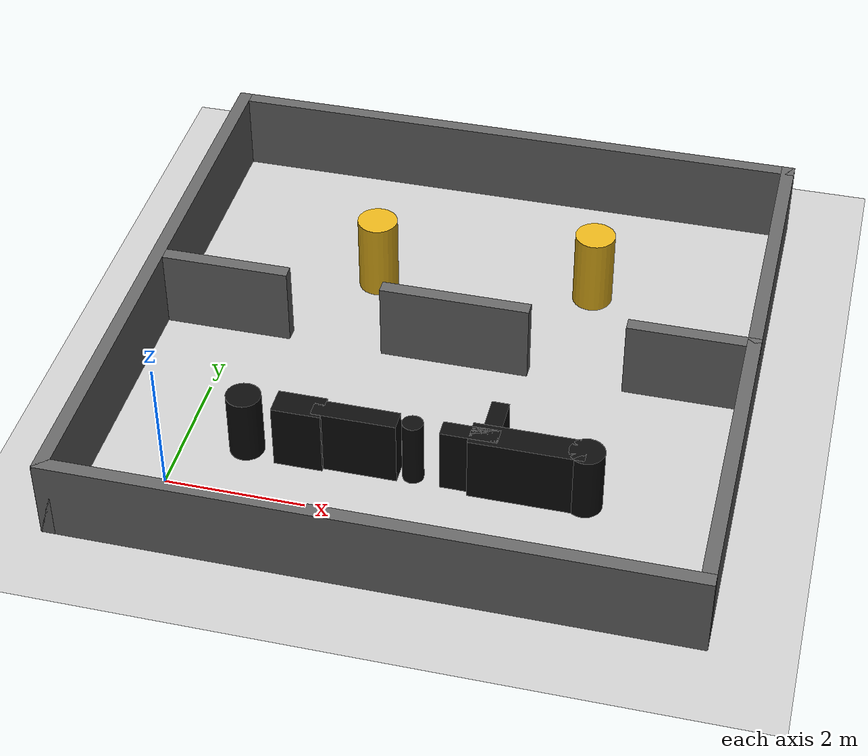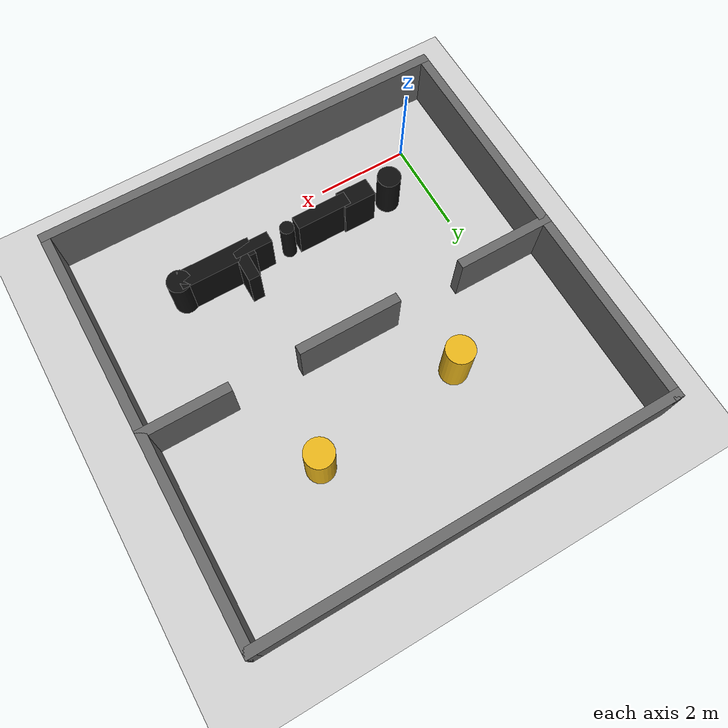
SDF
<?xml version="1.0"?>
<sdf version="1.8">
  <world name="arena">
    <physics name="1ms" type="ignored">
      <max_step_size>0.001</max_step_size>
      <real_time_factor>1.0</real_time_factor>
    </physics>
    <plugin filename="gz-sim-physics-system" name="gz::sim::systems::Physics"/>
    <plugin filename="gz-sim-user-commands-system" name="gz::sim::systems::UserCommands"/>
    <plugin filename="gz-sim-scene-broadcaster-system" name="gz::sim::systems::SceneBroadcaster"/>
    <plugin filename="gz-sim-sensors-system" name="gz::sim::systems::Sensors">
      <render_engine>ogre2</render_engine>
    </plugin>
    <light type="directional" name="sun">
      <cast_shadows>true</cast_shadows>
      <pose>0 0 10 0 0 0</pose>
      <diffuse>0.8 0.8 0.8 1</diffuse>
      <specular>0.2 0.2 0.2 1</specular>
      <direction>-0.5 0.1 -0.9</direction>
    </light>
    <model name="ground_plane">
      <static>true</static>
      <link name="link">
        <collision name="c">
          <geometry><plane><normal>0 0 1</normal><size>100 100</size></plane></geometry>
        </collision>
        <visual name="v">
          <geometry><plane><normal>0 0 1</normal><size>100 100</size></plane></geometry>
          <material><ambient>0.8 0.8 0.8 1</ambient><diffuse>0.8 0.8 0.8 1</diffuse></material>
        </visual>
      </link>
    </model>
    <model name="wall_0">
      <static>true</static>
      <pose>3.200 -1.200 0.600 0 0 0</pose>
      <link name="link">
        <collision name="c">
          <geometry><box><size>9.000 0.200 1.200</size></box></geometry>
        </collision>
        <visual name="v">
          <geometry><box><size>9.000 0.200 1.200</size></box></geometry>
          <material><ambient>0.4 0.4 0.4 1</ambient><diffuse>0.4 0.4 0.4 1</diffuse></material>
        </visual>
      </link>
    </model>
    <model name="wall_1">
      <static>true</static>
      <pose>3.200 7.600 0.600 0 0 0</pose>
      <link name="link">
        <collision name="c">
          <geometry><box><size>9.000 0.200 1.200</size></box></geometry>
        </collision>
        <visual name="v">
          <geometry><box><size>9.000 0.200 1.200</size></box></geometry>
          <material><ambient>0.4 0.4 0.4 1</ambient><diffuse>0.4 0.4 0.4 1</diffuse></material>
        </visual>
      </link>
    </model>
    <model name="wall_2">
      <static>true</static>
      <pose>-1.200 3.200 0.600 0 0 0</pose>
      <link name="link">
        <collision name="c">
          <geometry><box><size>0.200 9.000 1.200</size></box></geometry>
        </collision>
        <visual name="v">
          <geometry><box><size>0.200 9.000 1.200</size></box></geometry>
          <material><ambient>0.4 0.4 0.4 1</ambient><diffuse>0.4 0.4 0.4 1</diffuse></material>
        </visual>
      </link>
    </model>
    <model name="wall_3">
      <static>true</static>
      <pose>7.600 3.200 0.600 0 0 0</pose>
      <link name="link">
        <collision name="c">
          <geometry><box><size>0.200 9.000 1.200</size></box></geometry>
        </collision>
        <visual name="v">
          <geometry><box><size>0.200 9.000 1.200</size></box></geometry>
          <material><ambient>0.4 0.4 0.4 1</ambient><diffuse>0.4 0.4 0.4 1</diffuse></material>
        </visual>
      </link>
    </model>
    <model name="wall_4">
      <static>true</static>
      <pose>-0.250 3.400 0.600 0 0 0</pose>
      <link name="link">
        <collision name="c">
          <geometry><box><size>2.100 0.200 1.200</size></box></geometry>
        </collision>
        <visual name="v">
          <geometry><box><size>2.100 0.200 1.200</size></box></geometry>
          <material><ambient>0.4 0.4 0.4 1</ambient><diffuse>0.4 0.4 0.4 1</diffuse></material>
        </visual>
      </link>
    </model>
    <model name="wall_5">
      <static>true</static>
      <pose>3.300 3.400 0.600 0 0 0</pose>
      <link name="link">
        <collision name="c">
          <geometry><box><size>2.200 0.200 1.200</size></box></geometry>
        </collision>
        <visual name="v">
          <geometry><box><size>2.200 0.200 1.200</size></box></geometry>
          <material><ambient>0.4 0.4 0.4 1</ambient><diffuse>0.4 0.4 0.4 1</diffuse></material>
        </visual>
      </link>
    </model>
    <model name="wall_6">
      <static>true</static>
      <pose>6.750 3.400 0.600 0 0 0</pose>
      <link name="link">
        <collision name="c">
          <geometry><box><size>1.900 0.200 1.200</size></box></geometry>
        </collision>
        <visual name="v">
          <geometry><box><size>1.900 0.200 1.200</size></box></geometry>
          <material><ambient>0.4 0.4 0.4 1</ambient><diffuse>0.4 0.4 0.4 1</diffuse></material>
        </visual>
      </link>
    </model>
    <model name="unknown_obs_0">
      <static>true</static>
      <pose>1.750 4.900 0.600 0 0 0</pose>
      <link name="link">

        <collision name="c">
          <geometry><cylinder><radius>0.300</radius><length>1.200</length></cylinder></geometry>
        </collision>
        <visual name="v">
          <geometry><cylinder><radius>0.300</radius><length>1.200</length></cylinder></geometry>
          <material><ambient>0.9 0.7 0.1 1</ambient><diffuse>0.9 0.7 0.1 1</diffuse></material>
        </visual>
      </link>
    </model>
    <model name="unknown_obs_1">
      <static>true</static>
      <pose>5.000 5.300 0.600 0 0 0</pose>
      <link name="link">

        <collision name="c">
          <geometry><cylinder><radius>0.300</radius><length>1.200</length></cylinder></geometry>
        </collision>
        <visual name="v">
          <geometry><cylinder><radius>0.300</radius><length>1.200</length></cylinder></geometry>
          <material><ambient>0.9 0.7 0.1 1</ambient><diffuse>0.9 0.7 0.1 1</diffuse></material>
        </visual>
      </link>
    </model>
    <model name="dyn_obs_0">
      <pose>0.900 0.900 0.500 0 0 0</pose>
      <link name="link">
        <kinematic>true</kinematic>
        <gravity>false</gravity>
        <inertial><mass>1.0</mass><inertia><ixx>0.1</ixx><iyy>0.1</iyy>
          <izz>0.1</izz><ixy>0</ixy><ixz>0</ixz><iyz>0</iyz></inertia></inertial>
        <collision name="c"><geometry><cylinder><radius>0.250</radius><length>1.0</length></cylinder></geometry></collision>
        <visual name="v">
          <geometry><cylinder><radius>0.250</radius><length>1.0</length></cylinder></geometry>
          <material><ambient>0.05 0.05 0.05 1</ambient>
                    <diffuse>0.05 0.05 0.05 1</diffuse></material>
        </visual>
      </link>
      <plugin filename="gz-sim-velocity-control-system"
              name="gz::sim::systems::VelocityControl"/>
      <plugin filename="gz-sim-pose-publisher-system"
              name="gz::sim::systems::PosePublisher">
        <publish_link_pose>false</publish_link_pose>
        <publish_model_pose>true</publish_model_pose>
        <use_pose_vector_msg>false</use_pose_vector_msg>
        <update_frequency>20</update_frequency>
      </plugin>
    </model>
    <model name="dyn_obs_1">
      <pose>1.700 0.900 0.500 0 0 0</pose>
      <link name="link">
        <kinematic>true</kinematic>
        <gravity>false</gravity>
        <inertial><mass>1.0</mass><inertia><ixx>0.1</ixx><iyy>0.1</iyy>
          <izz>0.1</izz><ixy>0</ixy><ixz>0</ixz><iyz>0</iyz></inertia></inertial>
        <collision name="c"><geometry><box><size>0.700 0.400 1.000</size></box></geometry></collision>
        <visual name="v">
          <geometry><box><size>0.700 0.400 1.000</size></box></geometry>
          <material><ambient>0.05 0.05 0.05 1</ambient>
                    <diffuse>0.05 0.05 0.05 1</diffuse></material>
        </visual>
      </link>
      <plugin filename="gz-sim-velocity-control-system"
              name="gz::sim::systems::VelocityControl"/>
      <plugin filename="gz-sim-pose-publisher-system"
              name="gz::sim::systems::PosePublisher">
        <publish_link_pose>false</publish_link_pose>
        <publish_model_pose>true</publish_model_pose>
        <use_pose_vector_msg>false</use_pose_vector_msg>
        <update_frequency>20</update_frequency>
      </plugin>
    </model>
    <model name="dyn_obs_2">
      <pose>2.500 0.900 0.500 0 0 0</pose>
      <link name="link">
        <kinematic>true</kinematic>
        <gravity>false</gravity>
        <inertial><mass>1.0</mass><inertia><ixx>0.1</ixx><iyy>0.1</iyy>
          <izz>0.1</izz><ixy>0</ixy><ixz>0</ixz><iyz>0</iyz></inertia></inertial>
        <collision name="c"><geometry><box><size>1.200 0.300 1.000</size></box></geometry></collision>
        <visual name="v">
          <geometry><box><size>1.200 0.300 1.000</size></box></geometry>
          <material><ambient>0.05 0.05 0.05 1</ambient>
                    <diffuse>0.05 0.05 0.05 1</diffuse></material>
        </visual>
      </link>
      <plugin filename="gz-sim-velocity-control-system"
              name="gz::sim::systems::VelocityControl"/>
      <plugin filename="gz-sim-pose-publisher-system"
              name="gz::sim::systems::PosePublisher">
        <publish_link_pose>false</publish_link_pose>
        <publish_model_pose>true</publish_model_pose>
        <use_pose_vector_msg>false</use_pose_vector_msg>
        <update_frequency>20</update_frequency>
      </plugin>
    </model>
    <model name="dyn_obs_3">
      <pose>3.300 0.900 0.500 0 0 0</pose>
      <link name="link">
        <kinematic>true</kinematic>
        <gravity>false</gravity>
        <inertial><mass>1.0</mass><inertia><ixx>0.1</ixx><iyy>0.1</iyy>
          <izz>0.1</izz><ixy>0</ixy><ixz>0</ixz><iyz>0</iyz></inertia></inertial>
        <collision name="c"><geometry><cylinder><radius>0.150</radius><length>1.0</length></cylinder></geometry></collision>
        <visual name="v">
          <geometry><cylinder><radius>0.150</radius><length>1.0</length></cylinder></geometry>
          <material><ambient>0.05 0.05 0.05 1</ambient>
                    <diffuse>0.05 0.05 0.05 1</diffuse></material>
        </visual>
      </link>
      <plugin filename="gz-sim-velocity-control-system"
              name="gz::sim::systems::VelocityControl"/>
      <plugin filename="gz-sim-pose-publisher-system"
              name="gz::sim::systems::PosePublisher">
        <publish_link_pose>false</publish_link_pose>
        <publish_model_pose>true</publish_model_pose>
        <use_pose_vector_msg>false</use_pose_vector_msg>
        <update_frequency>20</update_frequency>
      </plugin>
    </model>
    <model name="dyn_obs_4">
      <pose>4.100 0.900 0.500 0 0 0</pose>
      <link name="link">
        <kinematic>true</kinematic>
        <gravity>false</gravity>
        <inertial><mass>1.0</mass><inertia><ixx>0.1</ixx><iyy>0.1</iyy>
          <izz>0.1</izz><ixy>0</ixy><ixz>0</ixz><iyz>0</iyz></inertia></inertial>
        <collision name="c1"><pose>0 0 0 0 0 0</pose>
          <geometry><box><size>0.800 0.250 1.000</size></box></geometry></collision>
        <visual name="v1"><pose>0 0 0 0 0 0</pose>
          <geometry><box><size>0.800 0.250 1.000</size></box></geometry>
          <material><ambient>0.05 0.05 0.05 1</ambient>
                    <diffuse>0.05 0.05 0.05 1</diffuse></material></visual>
        <collision name="c2"><pose>0.275 0.275 0 0 0 0</pose>
          <geometry><box><size>0.250 0.800 1.000</size></box></geometry></collision>
        <visual name="v2"><pose>0.275 0.275 0 0 0 0</pose>
          <geometry><box><size>0.250 0.800 1.000</size></box></geometry>
          <material><ambient>0.05 0.05 0.05 1</ambient>
                    <diffuse>0.05 0.05 0.05 1</diffuse></material></visual>
      </link>
      <plugin filename="gz-sim-velocity-control-system"
              name="gz::sim::systems::VelocityControl"/>
      <plugin filename="gz-sim-pose-publisher-system"
              name="gz::sim::systems::PosePublisher">
        <publish_link_pose>false</publish_link_pose>
        <publish_model_pose>true</publish_model_pose>
        <use_pose_vector_msg>false</use_pose_vector_msg>
        <update_frequency>20</update_frequency>
      </plugin>
    </model>
    <model name="dyn_obs_5">
      <pose>4.900 0.900 0.500 0 0 0</pose>
      <link name="link">
        <kinematic>true</kinematic>
        <gravity>false</gravity>
        <inertial><mass>1.0</mass><inertia><ixx>0.1</ixx><iyy>0.1</iyy>
          <izz>0.1</izz><ixy>0</ixy><ixz>0</ixz><iyz>0</iyz></inertia></inertial>
        <collision name="c"><geometry><box><size>1.600 0.400 1.000</size></box></geometry></collision>
        <visual name="v">
          <geometry><box><size>1.600 0.400 1.000</size></box></geometry>
          <material><ambient>0.05 0.05 0.05 1</ambient>
                    <diffuse>0.05 0.05 0.05 1</diffuse></material>
        </visual>
      </link>
      <plugin filename="gz-sim-velocity-control-system"
              name="gz::sim::systems::VelocityControl"/>
      <plugin filename="gz-sim-pose-publisher-system"
              name="gz::sim::systems::PosePublisher">
        <publish_link_pose>false</publish_link_pose>
        <publish_model_pose>true</publish_model_pose>
        <use_pose_vector_msg>false</use_pose_vector_msg>
        <update_frequency>20</update_frequency>
      </plugin>
    </model>
    <model name="dyn_obs_6">
      <pose>5.700 0.900 0.500 0 0 0</pose>
      <link name="link">
        <kinematic>true</kinematic>
        <gravity>false</gravity>
        <inertial><mass>1.0</mass><inertia><ixx>0.1</ixx><iyy>0.1</iyy>
          <izz>0.1</izz><ixy>0</ixy><ixz>0</ixz><iyz>0</iyz></inertia></inertial>
        <collision name="c"><geometry><cylinder><radius>0.250</radius><length>1.0</length></cylinder></geometry></collision>
        <visual name="v">
          <geometry><cylinder><radius>0.250</radius><length>1.0</length></cylinder></geometry>
          <material><ambient>0.05 0.05 0.05 1</ambient>
                    <diffuse>0.05 0.05 0.05 1</diffuse></material>
        </visual>
      </link>
      <plugin filename="gz-sim-velocity-control-system"
              name="gz::sim::systems::VelocityControl"/>
      <plugin filename="gz-sim-pose-publisher-system"
              name="gz::sim::systems::PosePublisher">
        <publish_link_pose>false</publish_link_pose>
        <publish_model_pose>true</publish_model_pose>
        <use_pose_vector_msg>false</use_pose_vector_msg>
        <update_frequency>20</update_frequency>
      </plugin>
    </model>
  </world>
</sdf>
